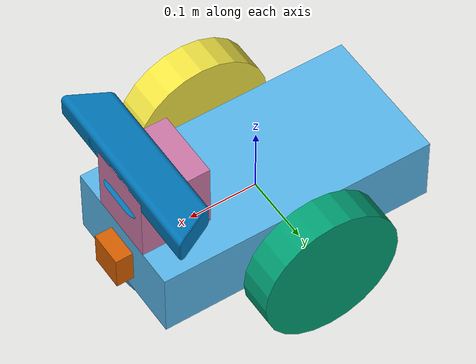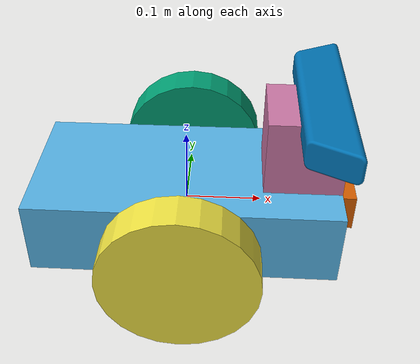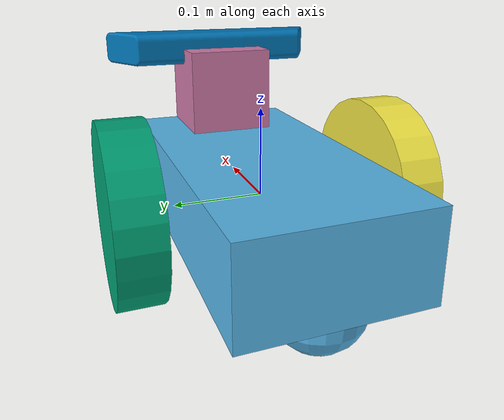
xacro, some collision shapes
<?xml version='1.0'?>

<robot name="udacity_bot" xmlns:xacro="http://www.ros.org/wiki/xacro">

  <xacro:include filename="$(find rtab_map)/urdf/udacity_bot.gazebo" />
  <link name="robot_footprint"></link>

  <joint name="robot_footprint_joint" type="fixed">
    <origin xyz="0 0 0" rpy="0 0 0" />
    <parent link="robot_footprint"/>
    <child link="chassis" />
  </joint>

  <link name='chassis'>
    <pose>0 0 0.1 0 0 0</pose>

    <inertial>
      <mass value="15.0"/>
      <origin xyz="0.0 0 0" rpy=" 0 0 0"/>
      <inertia
          ixx="0.1" ixy="0" ixz="0"
          iyy="0.1" iyz="0"
          izz="0.1"
      />
    </inertial>

    <collision name='collision'>
      <origin xyz="0 0 0" rpy=" 0 0 0"/>
      <geometry>
        <box size=".4 .2 .1"/>
      </geometry>
    </collision>

    <visual name='chassis_visual'>
      <origin xyz="0 0 0" rpy=" 0 0 0"/>
      <geometry>
        <box size=".4 .2 .1"/>
      </geometry>
    </visual>

    <collision name='back_caster_collision'>
      <origin xyz="-0.15 0 -0.05" rpy=" 0 0 0"/>
      <geometry>
        <sphere radius="0.0499"/>
      </geometry>
    </collision>

    <visual name='back_caster_visual'>
      <origin xyz="-0.15 0 -0.05" rpy=" 0 0 0"/>
      <geometry>
        <sphere radius="0.05"/>
      </geometry>
    </visual>

    <collision name='front_caster_collision'>
      <origin xyz="0.15 0 -0.05" rpy=" 0 0 0"/>
      <geometry>
        <sphere radius="0.0499"/>
      </geometry>
    </collision>

    <visual name='front_caster_visual'>
      <origin xyz="0.15 0 -0.05" rpy=" 0 0 0"/>
      <geometry>
        <sphere radius="0.05"/>
      </geometry>
    </visual>

  </link>

  <!-- Left wheel joint-->
  <joint type="continuous" name="left_wheel_hinge">
    <origin xyz="0 0.15 0" rpy="0 0 0"/>
    <child link="left_wheel"/>
    <parent link="chassis"/>
    <axis xyz="0 1 0" rpy="0 0 0"/>
    <limit effort="10000" velocity="1000"/>
    <dynamics damping="1.0" friction="1.0"/>
  </joint>
  <!-- Left wheel link-->
  <link name='left_wheel'>
    <inertial>
      <mass value="5.0"/>
      <origin xyz="0 0 0" rpy=" 0 1.5707 1.5707"/>
      <inertia
          ixx="0.1" ixy="0" ixz="0"
          iyy="0.1" iyz="0"
          izz="0.1"
      />
    </inertial>

    <collision name='left_wheel_collision'>
      <origin xyz="0 0 0" rpy=" 0 1.5707 1.5707"/>
      <geometry>
        <cylinder radius="0.1" length="0.05"/>
      </geometry>
    </collision>

    <visual name='left_wheel_visual'>
      <origin xyz="0 0 0" rpy=" 0 1.5707 1.5707"/>
      <geometry>
        <cylinder radius="0.1" length="0.05"/>
      </geometry>
    </visual>
  </link>

  <!-- Right wheel joint-->
  <joint type="continuous" name="right_wheel_hinge">
    <origin xyz="0 -0.15 0" rpy="0 0 0"/>
    <child link="right_wheel"/>
    <parent link="chassis"/>
    <axis xyz="0 1 0" rpy="0 0 0"/>
    <limit effort="10000" velocity="1000"/>
    <dynamics damping="1.0" friction="1.0"/>
  </joint>

  <!-- Left wheel link-->
  <link name='right_wheel'>
    <inertial>
      <mass value="5.0"/>
      <origin xyz="0 0 0" rpy=" 0 1.5707 1.5707"/>
      <inertia
          ixx="0.1" ixy="0" ixz="0"
          iyy="0.1" iyz="0"
          izz="0.1"
      />
    </inertial>

    <collision name='right_wheel_collision'>
      <origin xyz="0 0 0" rpy=" 0 1.5707 1.5707"/>
      <geometry>
        <cylinder radius="0.1" length="0.05"/>
      </geometry>
    </collision>

    <visual name='right_wheel_visual'>
      <origin xyz="0 0 0" rpy=" 0 1.5707 1.5707"/>
      <geometry>
        <cylinder radius="0.1" length="0.05"/>
      </geometry>
    </visual>
   </link>

<!-- RGBD Camera -->
<!-- RGBD Camera link -->
  <link name="RGBD_camera">

    <visual name='RGBD_camera_visual'>
      <origin xyz="0 0 0" rpy=" 0 0 0"/>
      <geometry>
        <mesh filename="package://slam_project/meshes/kinect.dae"/>
      </geometry>
    </visual>

    <collision>
      <origin xyz="-0.03 0 -0.015" rpy="0 0 0"/>
  	  <geometry>
  	    <box size="0.075 0.25 0.075"/>
  	  </geometry>
  	</collision>

    <inertial>
      <mass value="0.564" />
      <origin xyz="0 0 0" />
      <inertia ixx="0.003881243" ixy="0.0" ixz="0.0"
               iyy="0.000498940" iyz="0.0"
               izz="0.003879257" />
    </inertial>
  </link>

<!-- RGBD Camera joint -->
  <joint type="fixed" name="RGB_camera_joint">
      <origin xyz="0.2 0 0.15" rpy="0 0 0"/>
      <child link="RGBD_camera"/>
      <parent link="chassis"/>
      <axis xyz="1 0 0" rpy="0 0 0"/>
  </joint>
<!-- End of RGBD Camera -->

<!-- Depth Camera -->
<!-- Depth Camera link -->
<!-- Depth Camera joint -->
<!-- End of Depth Camera -->

<!-- Camera joint -->
  <joint type="fixed" name="camera_joint">
   <origin xyz="0.2 0 0" rpy="0 0 0"/>
   <child link="camera"/>
   <parent link="chassis"/>
  </joint>

  <!-- Camera link -->
  <link name='camera'>
    <inertial>
      <mass value="0.1"/>
      <origin xyz="0 0 0" rpy="0 0 0"/>
      <inertia
          ixx="1e-6" ixy="0" ixz="0"
          iyy="1e-6" iyz="0"
          izz="1e-6"
      />
    </inertial>

    <collision name='camera'>
      <origin xyz="0 0 0" rpy=" 0 0 0"/>
      <geometry>
        <box size="0.05 0.05 0.05"/>
      </geometry>
    </collision>

    <visual name='camera'>
      <origin xyz="0 0 0" rpy=" 0 0 0"/>
      <geometry>
        <box size="0.05 0.05 0.05"/>
      </geometry>
    </visual>
  </link>

  <!-- Lazer/Hokuyo joint -->
  <joint type="fixed" name="hokuyo_joint">
    <origin xyz="0.15 0 0.1" rpy="0 0 0"/>
    <child link="hokuyo"/>
    <parent link="chassis"/>
  </joint>

  <!-- Lazer/Hokuyo link -->
  <link name='hokuyo'>
    <inertial>
      <mass value="0.1"/>
      <origin xyz="0 0 0" rpy="0 0 0"/>
      <inertia
          ixx="1e-6" ixy="0" ixz="0"
          iyy="1e-6" iyz="0"
          izz="1e-6"
      />
    </inertial>

    <collision name='hokuyo'>
      <origin xyz="0 0 0" rpy=" 0 0 0"/>
      <geometry>
        <box size="0.1 0.1 0.1"/>
      </geometry>
    </collision>

    <visual name='hokuyo'>
      <origin xyz="0 0 0" rpy=" 0 0 0"/>
      <geometry>
        <!--box size="0.05 0.05 0.05"/-->
        <mesh filename="package://udacity_bot/meshes/hokuyo.dae"/>
      </geometry>
    </visual>
  </link>

</robot>
